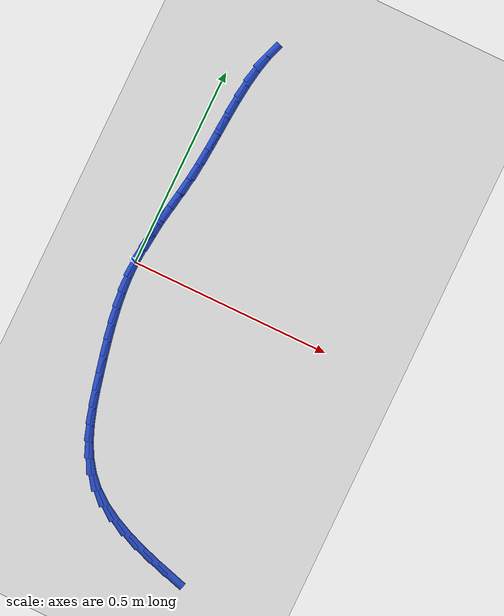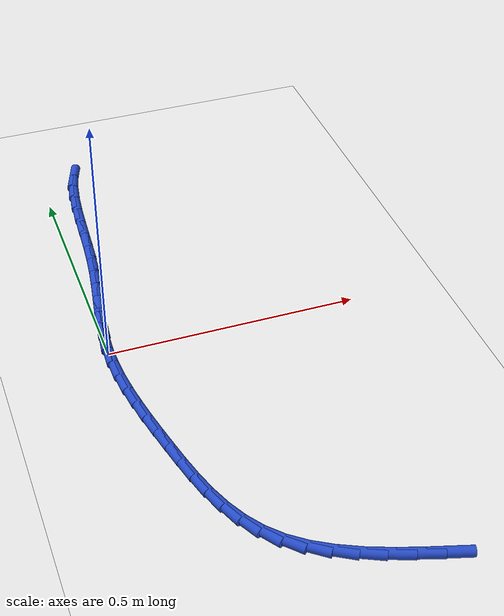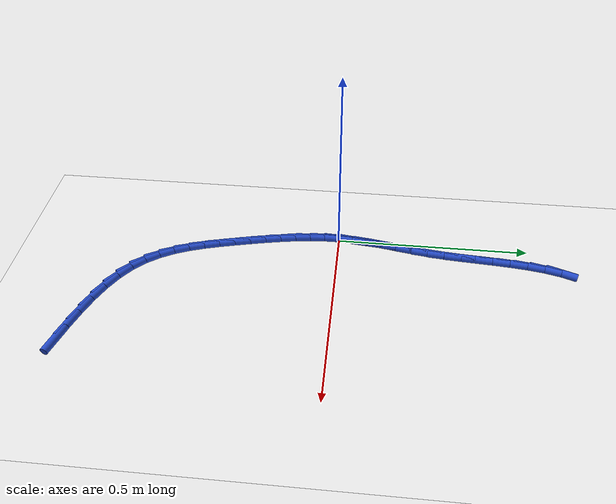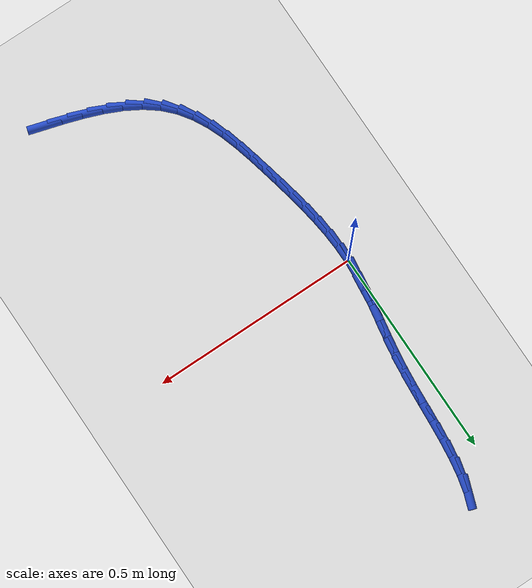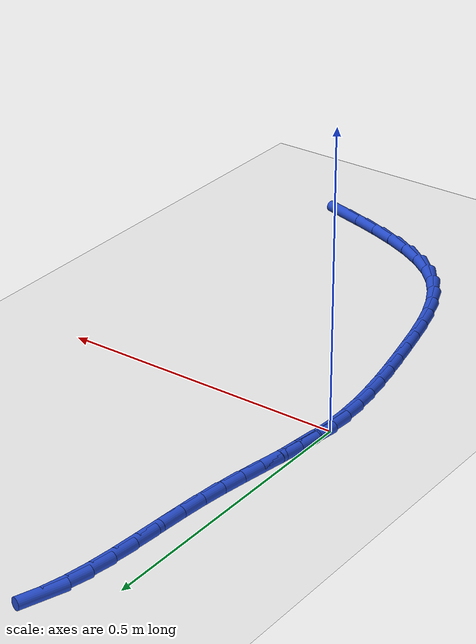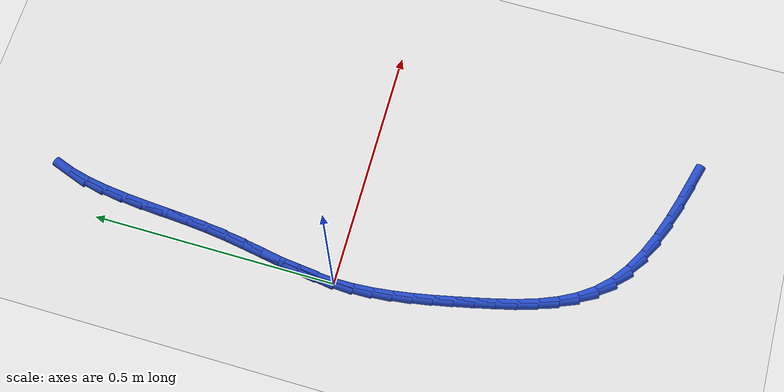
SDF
<sdf version="1.6">
 <world name="default">
  <model name="ground_plane">
   <static>1</static>
   <link name="link">
    <collision name="collision">
     <geometry><plane><normal>0 0 1</normal><size>100 100</size></plane></geometry>
     <surface><friction><ode><mu>100</mu><mu2>50</mu2></ode></friction></surface>
    </collision>
    <visual name="visual">
     <cast_shadows>0</cast_shadows>
     <geometry><plane><normal>0 0 1</normal><size>100 100</size></plane></geometry>
     <material>
      <script><uri>file://media/materials/scripts/gazebo.material</uri><name>Gazebo/WhiteGlow</name></script>
     </material>
    </visual>
   </link>
  </model>
  <model name="line">
   <link name="link_0">
    <pose>5.204170427930421e-18 0.0 0.01 0 1.57 1.510636619257337</pose>
    <collision name="collision">
     <geometry><cylinder><radius>0.01</radius><length>0.08</length></cylinder></geometry>
    </collision>
    <visual name="visual">
     <material>
      <script><name>Gazebo/Blue</name><uri>file://media/materials/scripts/gazebo.material</uri></script>
     </material>
     <geometry><cylinder><radius>0.01</radius><length>0.08</length></cylinder></geometry>
    </visual>
   </link>
   <link name="link_1">
    <pose>0.0022938607161674084 0.0380835086436691 0.01 0 1.57 1.4565001393885795</pose>
    <collision name="collision">
     <geometry><cylinder><radius>0.01</radius><length>0.08</length></cylinder></geometry>
    </collision>
    <visual name="visual">
     <material>
      <script><name>Gazebo/Blue</name><uri>file://media/materials/scripts/gazebo.material</uri></script>
     </material>
     <geometry><cylinder><radius>0.01</radius><length>0.08</length></cylinder></geometry>
    </visual>
   </link>
   <link name="link_2">
    <pose>0.006658940441760616 0.07610800742557951 0.01 0 1.57 1.4200256374483922</pose>
    <collision name="collision">
     <geometry><cylinder><radius>0.01</radius><length>0.08</length></cylinder></geometry>
    </collision>
    <visual name="visual">
     <material>
      <script><name>Gazebo/Blue</name><uri>file://media/materials/scripts/gazebo.material</uri></script>
     </material>
     <geometry><cylinder><radius>0.01</radius><length>0.08</length></cylinder></geometry>
    </visual>
   </link>
   <link name="link_3">
    <pose>0.012472586296439016 0.11437491082924207 0.01 0 1.57 1.4013611811894124</pose>
    <collision name="collision">
     <geometry><cylinder><radius>0.01</radius><length>0.08</length></cylinder></geometry>
    </collision>
    <visual name="visual">
     <material>
      <script><name>Gazebo/Blue</name><uri>file://media/materials/scripts/gazebo.material</uri></script>
     </material>
     <geometry><cylinder><radius>0.01</radius><length>0.08</length></cylinder></geometry>
    </visual>
   </link>
   <link name="link_4">
    <pose>0.019112145399861984 0.15318563333816754 0.01 0 1.57 1.3999243317049128</pose>
    <collision name="collision">
     <geometry><cylinder><radius>0.01</radius><length>0.08</length></cylinder></geometry>
    </collision>
    <visual name="visual">
     <material>
      <script><name>Gazebo/Blue</name><uri>file://media/materials/scripts/gazebo.material</uri></script>
     </material>
     <geometry><cylinder><radius>0.01</radius><length>0.08</length></cylinder></geometry>
    </visual>
   </link>
   <link name="link_5">
    <pose>0.025954964871688923 0.19284158943586674 0.01 0 1.57 1.41465095230036</pose>
    <collision name="collision">
     <geometry><cylinder><radius>0.01</radius><length>0.08</length></cylinder></geometry>
    </collision>
    <visual name="visual">
     <material>
      <script><name>Gazebo/Blue</name><uri>file://media/materials/scripts/gazebo.material</uri></script>
     </material>
     <geometry><cylinder><radius>0.01</radius><length>0.08</length></cylinder></geometry>
    </visual>
   </link>
   <link name="link_6">
    <pose>0.032378391831579194 0.23364419360585043 0.01 0 1.57 1.4440946087735353</pose>
    <collision name="collision">
     <geometry><cylinder><radius>0.01</radius><length>0.08</length></cylinder></geometry>
    </collision>
    <visual name="visual">
     <material>
      <script><name>Gazebo/Blue</name><uri>file://media/materials/scripts/gazebo.material</uri></script>
     </material>
     <geometry><cylinder><radius>0.01</radius><length>0.08</length></cylinder></geometry>
    </visual>
   </link>
   <link name="link_7">
    <pose>0.03776039522860747 0.2758943929522019 0.01 0 1.57 1.4787377275433138</pose>
    <collision name="collision">
     <geometry><cylinder><radius>0.01</radius><length>0.08</length></cylinder></geometry>
    </collision>
    <visual name="visual">
     <material>
      <script><name>Gazebo/Blue</name><uri>file://media/materials/scripts/gazebo.material</uri></script>
     </material>
     <geometry><cylinder><radius>0.01</radius><length>0.08</length></cylinder></geometry>
    </visual>
   </link>
   <link name="link_8">
    <pose>0.041800057151947095 0.3196517795194431 0.01 0 1.57 1.4983967013484</pose>
    <collision name="collision">
     <geometry><cylinder><radius>0.01</radius><length>0.08</length></cylinder></geometry>
    </collision>
    <visual name="visual">
     <material>
      <script><name>Gazebo/Blue</name><uri>file://media/materials/scripts/gazebo.material</uri></script>
     </material>
     <geometry><cylinder><radius>0.01</radius><length>0.08</length></cylinder></geometry>
    </visual>
   </link>
   <link name="link_9">
    <pose>0.045041206233457955 0.36434101695252435 0.01 0 1.57 1.5014031646694834</pose>
    <collision name="collision">
     <geometry><cylinder><radius>0.01</radius><length>0.08</length></cylinder></geometry>
    </collision>
    <visual name="visual">
     <material>
      <script><name>Gazebo/Blue</name><uri>file://media/materials/scripts/gazebo.material</uri></script>
     </material>
     <geometry><cylinder><radius>0.01</radius><length>0.08</length></cylinder></geometry>
    </visual>
   </link>
   <link name="link_10">
    <pose>0.04816492996597125 0.4092836023907988 0.01 0 1.57 1.4881548193290182</pose>
    <collision name="collision">
     <geometry><cylinder><radius>0.01</radius><length>0.08</length></cylinder></geometry>
    </collision>
    <visual name="visual">
     <material>
      <script><name>Gazebo/Blue</name><uri>file://media/materials/scripts/gazebo.material</uri></script>
     </material>
     <geometry><cylinder><radius>0.01</radius><length>0.08</length></cylinder></geometry>
    </visual>
   </link>
   <link name="link_11">
    <pose>0.0518523158423183 0.45380103297362034 0.01 0 1.57 1.4576737201625056</pose>
    <collision name="collision">
     <geometry><cylinder><radius>0.01</radius><length>0.08</length></cylinder></geometry>
    </collision>
    <visual name="visual">
     <material>
      <script><name>Gazebo/Blue</name><uri>file://media/materials/scripts/gazebo.material</uri></script>
     </material>
     <geometry><cylinder><radius>0.01</radius><length>0.08</length></cylinder></geometry>
    </visual>
   </link>
   <link name="link_12">
    <pose>0.056784451355330334 0.4972148058403425 0.01 0 1.57 1.4075326300873543</pose>
    <collision name="collision">
     <geometry><cylinder><radius>0.01</radius><length>0.08</length></cylinder></geometry>
    </collision>
    <visual name="visual">
     <material>
      <script><name>Gazebo/Blue</name><uri>file://media/materials/scripts/gazebo.material</uri></script>
     </material>
     <geometry><cylinder><radius>0.01</radius><length>0.08</length></cylinder></geometry>
    </visual>
   </link>
   <link name="link_13">
    <pose>0.06364242399783858 0.5388464181303186 0.01 0 1.57 1.3337101877858397</pose>
    <collision name="collision">
     <geometry><cylinder><radius>0.01</radius><length>0.08</length></cylinder></geometry>
    </collision>
    <visual name="visual">
     <material>
      <script><name>Gazebo/Blue</name><uri>file://media/materials/scripts/gazebo.material</uri></script>
     </material>
     <geometry><cylinder><radius>0.01</radius><length>0.08</length></cylinder></geometry>
    </visual>
   </link>
   <link name="link_14">
    <pose>0.07310732126267436 0.578017366982903 0.01 0 1.57 1.2306202392710377</pose>
    <collision name="collision">
     <geometry><cylinder><radius>0.01</radius><length>0.08</length></cylinder></geometry>
    </collision>
    <visual name="visual">
     <material>
      <script><name>Gazebo/Blue</name><uri>file://media/materials/scripts/gazebo.material</uri></script>
     </material>
     <geometry><cylinder><radius>0.01</radius><length>0.08</length></cylinder></geometry>
    </visual>
   </link>
   <link name="link_210">
    <pose>0.3968095993078084 -0.6363839479859131 0.01 0 1.57 -0.2834102644255152</pose>
    <collision name="collision">
     <geometry><cylinder><radius>0.01</radius><length>0.08</length></cylinder></geometry>
    </collision>
    <visual name="visual">
     <material>
      <script><name>Gazebo/Blue</name><uri>file://media/materials/scripts/gazebo.material</uri></script>
     </material>
     <geometry><cylinder><radius>0.01</radius><length>0.08</length></cylinder></geometry>
    </visual>
   </link>
   <link name="link_211">
    <pose>0.3508175761776785 -0.6229887613598416 0.01 0 1.57 -0.3149738235699996</pose>
    <collision name="collision">
     <geometry><cylinder><radius>0.01</radius><length>0.08</length></cylinder></geometry>
    </collision>
    <visual name="visual">
     <material>
      <script><name>Gazebo/Blue</name><uri>file://media/materials/scripts/gazebo.material</uri></script>
     </material>
     <geometry><cylinder><radius>0.01</radius><length>0.08</length></cylinder></geometry>
    </visual>
   </link>
   <link name="link_212">
    <pose>0.3059562253175901 -0.6083720141190256 0.01 0 1.57 -0.36408491877710814</pose>
    <collision name="collision">
     <geometry><cylinder><radius>0.01</radius><length>0.08</length></cylinder></geometry>
    </collision>
    <visual name="visual">
     <material>
      <script><name>Gazebo/Blue</name><uri>file://media/materials/scripts/gazebo.material</uri></script>
     </material>
     <geometry><cylinder><radius>0.01</radius><length>0.08</length></cylinder></geometry>
    </visual>
   </link>
   <link name="link_213">
    <pose>0.26302745039327413 -0.5920129859118992 0.01 0 1.57 -0.43385925307326045</pose>
    <collision name="collision">
     <geometry><cylinder><radius>0.01</radius><length>0.08</length></cylinder></geometry>
    </collision>
    <visual name="visual">
     <material>
      <script><name>Gazebo/Blue</name><uri>file://media/materials/scripts/gazebo.material</uri></script>
     </material>
     <geometry><cylinder><radius>0.01</radius><length>0.08</length></cylinder></geometry>
    </visual>
   </link>
   <link name="link_214">
    <pose>0.22283315507046134 -0.5733909563868964 0.01 0 1.57 -0.5285214794419321</pose>
    <collision name="collision">
     <geometry><cylinder><radius>0.01</radius><length>0.08</length></cylinder></geometry>
    </collision>
    <visual name="visual">
     <material>
      <script><name>Gazebo/Blue</name><uri>file://media/materials/scripts/gazebo.material</uri></script>
     </material>
     <geometry><cylinder><radius>0.01</radius><length>0.08</length></cylinder></geometry>
    </visual>
   </link>
   <link name="link_215">
    <pose>0.18617524301488195 -0.551985205192451 0.01 0 1.57 -0.6527526318887052</pose>
    <collision name="collision">
     <geometry><cylinder><radius>0.01</radius><length>0.08</length></cylinder></geometry>
    </collision>
    <visual name="visual">
     <material>
      <script><name>Gazebo/Blue</name><uri>file://media/materials/scripts/gazebo.material</uri></script>
     </material>
     <geometry><cylinder><radius>0.01</radius><length>0.08</length></cylinder></geometry>
    </visual>
   </link>
   <link name="link_216">
    <pose>0.15385561789226856 -0.5272750119769979 0.01 0 1.57 -0.8067732189266181</pose>
    <collision name="collision">
     <geometry><cylinder><radius>0.01</radius><length>0.08</length></cylinder></geometry>
    </collision>
    <visual name="visual">
     <material>
      <script><name>Gazebo/Blue</name><uri>file://media/materials/scripts/gazebo.material</uri></script>
     </material>
     <geometry><cylinder><radius>0.01</radius><length>0.08</length></cylinder></geometry>
    </visual>
   </link>
   <link name="link_217">
    <pose>0.1265815598237028 -0.4988093324351302 0.01 0 1.57 -0.9590043169744006</pose>
    <collision name="collision">
     <geometry><cylinder><radius>0.01</radius><length>0.08</length></cylinder></geometry>
    </collision>
    <visual name="visual">
     <material>
      <script><name>Gazebo/Blue</name><uri>file://media/materials/scripts/gazebo.material</uri></script>
     </material>
     <geometry><cylinder><radius>0.01</radius><length>0.08</length></cylinder></geometry>
    </visual>
   </link>
   <link name="link_218">
    <pose>0.10413640228581031 -0.46681747036387994 0.01 0 1.57 -1.086675380626322</pose>
    <collision name="collision">
     <geometry><cylinder><radius>0.01</radius><length>0.08</length></cylinder></geometry>
    </collision>
    <visual name="visual">
     <material>
      <script><name>Gazebo/Blue</name><uri>file://media/materials/scripts/gazebo.material</uri></script>
     </material>
     <geometry><cylinder><radius>0.01</radius><length>0.08</length></cylinder></geometry>
    </visual>
   </link>
   <link name="link_219">
    <pose>0.08578156049736156 -0.43191304406424996 0.01 0 1.57 -1.187294762330111</pose>
    <collision name="collision">
     <geometry><cylinder><radius>0.01</radius><length>0.08</length></cylinder></geometry>
    </collision>
    <visual name="visual">
     <material>
      <script><name>Gazebo/Blue</name><uri>file://media/materials/scripts/gazebo.material</uri></script>
     </material>
     <geometry><cylinder><radius>0.01</radius><length>0.08</length></cylinder></geometry>
    </visual>
   </link>
   <link name="link_220">
    <pose>0.07077254917635405 -0.39471401667093126 0.01 0 1.57 -1.2618530023076302</pose>
    <collision name="collision">
     <geometry><cylinder><radius>0.01</radius><length>0.08</length></cylinder></geometry>
    </collision>
    <visual name="visual">
     <material>
      <script><name>Gazebo/Blue</name><uri>file://media/materials/scripts/gazebo.material</uri></script>
     </material>
     <geometry><cylinder><radius>0.01</radius><length>0.08</length></cylinder></geometry>
    </visual>
   </link>
   <link name="link_221">
    <pose>0.058364883040783834 -0.35583835131861297 0.01 0 1.57 -1.3124946562808681</pose>
    <collision name="collision">
     <geometry><cylinder><radius>0.01</radius><length>0.08</length></cylinder></geometry>
    </collision>
    <visual name="visual">
     <material>
      <script><name>Gazebo/Blue</name><uri>file://media/materials/scripts/gazebo.material</uri></script>
     </material>
     <geometry><cylinder><radius>0.01</radius><length>0.08</length></cylinder></geometry>
    </visual>
   </link>
   <link name="link_222">
    <pose>0.0478140768086475 -0.31590401114198463 0.01 0 1.57 -1.341151352941539</pose>
    <collision name="collision">
     <geometry><cylinder><radius>0.01</radius><length>0.08</length></cylinder></geometry>
    </collision>
    <visual name="visual">
     <material>
      <script><name>Gazebo/Blue</name><uri>file://media/materials/scripts/gazebo.material</uri></script>
     </material>
     <geometry><cylinder><radius>0.01</radius><length>0.08</length></cylinder></geometry>
    </visual>
   </link>
   <link name="link_223">
    <pose>0.03837564519794138 -0.27552895927573473 0.01 0 1.57 -1.3519414532435126</pose>
    <collision name="collision">
     <geometry><cylinder><radius>0.01</radius><length>0.08</length></cylinder></geometry>
    </collision>
    <visual name="visual">
     <material>
      <script><name>Gazebo/Blue</name><uri>file://media/materials/scripts/gazebo.material</uri></script>
     </material>
     <geometry><cylinder><radius>0.01</radius><length>0.08</length></cylinder></geometry>
    </visual>
   </link>
   <link name="link_224">
    <pose>0.02942081283948811 -0.2352675642987486 0.01 0 1.57 -1.3640177067195984</pose>
    <collision name="collision">
     <geometry><cylinder><radius>0.01</radius><length>0.08</length></cylinder></geometry>
    </collision>
    <visual name="visual">
     <material>
      <script><name>Gazebo/Blue</name><uri>file://media/materials/scripts/gazebo.material</uri></script>
     </material>
     <geometry><cylinder><radius>0.01</radius><length>0.08</length></cylinder></geometry>
    </visual>
   </link>
   <link name="link_225">
    <pose>0.021032929964761072 -0.19528280817362034 0.01 0 1.57 -1.3848576698815562</pose>
    <collision name="collision">
     <geometry><cylinder><radius>0.01</radius><length>0.08</length></cylinder></geometry>
    </collision>
    <visual name="visual">
     <material>
      <script><name>Gazebo/Blue</name><uri>file://media/materials/scripts/gazebo.material</uri></script>
     </material>
     <geometry><cylinder><radius>0.01</radius><length>0.08</length></cylinder></geometry>
    </visual>
   </link>
   <link name="link_226">
    <pose>0.01356604680365299 -0.15558889523675976 0.01 0 1.57 -1.4148888586297574</pose>
    <collision name="collision">
     <geometry><cylinder><radius>0.01</radius><length>0.08</length></cylinder></geometry>
    </collision>
    <visual name="visual">
     <material>
      <script><name>Gazebo/Blue</name><uri>file://media/materials/scripts/gazebo.material</uri></script>
     </material>
     <geometry><cylinder><radius>0.01</radius><length>0.08</length></cylinder></geometry>
    </visual>
   </link>
   <link name="link_227">
    <pose>0.007374737791393355 -0.11619974171956714 0.01 0 1.57 -1.454580512627232</pose>
    <collision name="collision">
     <geometry><cylinder><radius>0.01</radius><length>0.08</length></cylinder></geometry>
    </collision>
    <visual name="visual">
     <material>
      <script><name>Gazebo/Blue</name><uri>file://media/materials/scripts/gazebo.material</uri></script>
     </material>
     <geometry><cylinder><radius>0.01</radius><length>0.08</length></cylinder></geometry>
    </visual>
   </link>
   <link name="link_228">
    <pose>0.002813577363211561 -0.07712926385344188 0.01 0 1.57 -1.5043846363761448</pose>
    <collision name="collision">
     <geometry><cylinder><radius>0.01</radius><length>0.08</length></cylinder></geometry>
    </collision>
    <visual name="visual">
     <material>
      <script><name>Gazebo/Blue</name><uri>file://media/materials/scripts/gazebo.material</uri></script>
     </material>
     <geometry><cylinder><radius>0.01</radius><length>0.08</length></cylinder></geometry>
    </visual>
   </link>
   <link name="link_229">
    <pose>0.0002371399543373287 -0.038391377869786386 0.01 0 1.57 -1.564619498777655</pose>
    <collision name="collision">
     <geometry><cylinder><radius>0.01</radius><length>0.08</length></cylinder></geometry>
    </collision>
    <visual name="visual">
     <material>
      <script><name>Gazebo/Blue</name><uri>file://media/materials/scripts/gazebo.material</uri></script>
     </material>
     <geometry><cylinder><radius>0.01</radius><length>0.08</length></cylinder></geometry>
    </visual>
   </link>
   <link name="link_230">
    <pose>1.734723475976807e-18 5.551115123125783e-17 0.01 0 1.57 1.5062877362464098</pose>
    <collision name="collision">
     <geometry><cylinder><radius>0.01</radius><length>0.08</length></cylinder></geometry>
    </collision>
    <visual name="visual">
     <material>
      <script><name>Gazebo/Blue</name><uri>file://media/materials/scripts/gazebo.material</uri></script>
     </material>
     <geometry><cylinder><radius>0.01</radius><length>0.08</length></cylinder></geometry>
    </visual>
   </link>
   <link name="link_231">
    <pose>0.0024567319354290695 0.03803095352451705 0.01 0 1.57 1.4256304987209893</pose>
    <collision name="collision">
     <geometry><cylinder><radius>0.01</radius><length>0.08</length></cylinder></geometry>
    </collision>
    <visual name="visual">
     <material>
      <script><name>Gazebo/Blue</name><uri>file://media/materials/scripts/gazebo.material</uri></script>
     </material>
     <geometry><cylinder><radius>0.01</radius><length>0.08</length></cylinder></geometry>
    </visual>
   </link>
   <link name="link_232">
    <pose>0.007961910195854018 0.0756875664723643 0.01 0 1.57 1.4659873661027703</pose>
    <collision name="collision">
     <geometry><cylinder><radius>0.01</radius><length>0.08</length></cylinder></geometry>
    </collision>
    <visual name="visual">
     <material>
      <script><name>Gazebo/Blue</name><uri>file://media/materials/scripts/gazebo.material</uri></script>
     </material>
     <geometry><cylinder><radius>0.01</radius><length>0.08</length></cylinder></geometry>
    </visual>
   </link>
  </model>
 </world>
</sdf>
